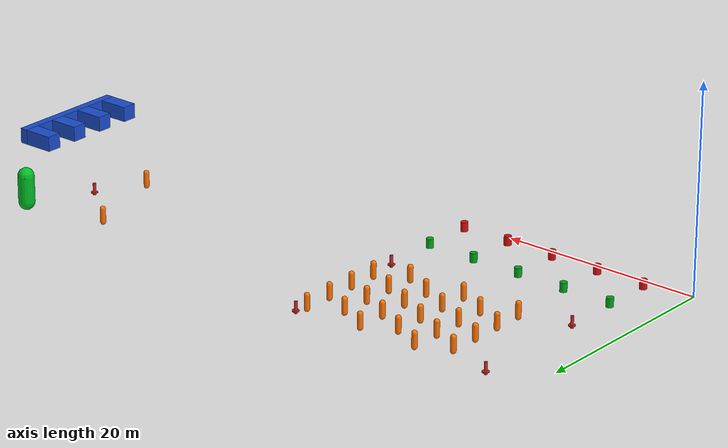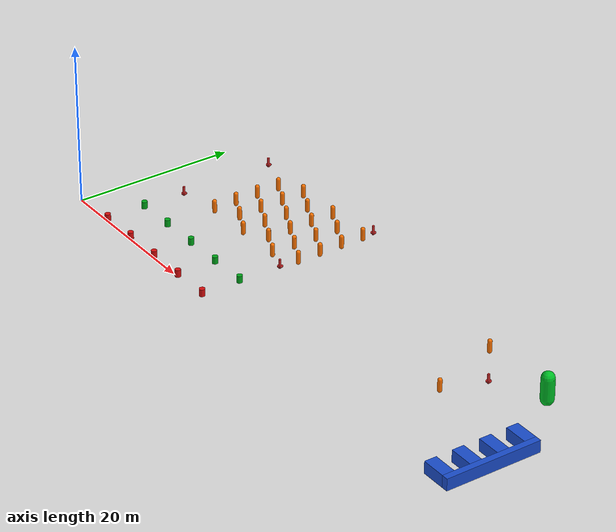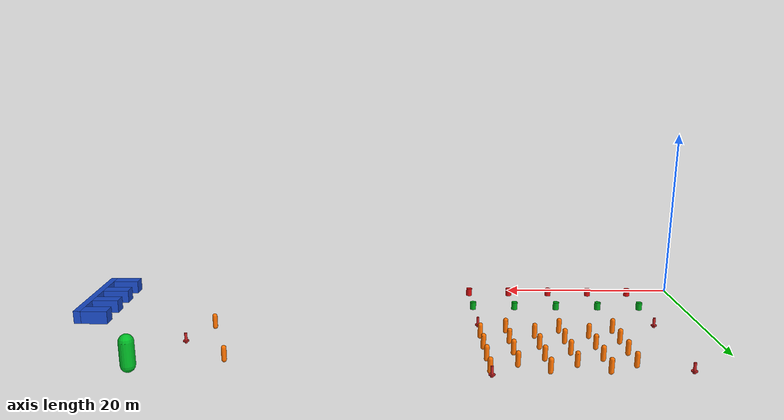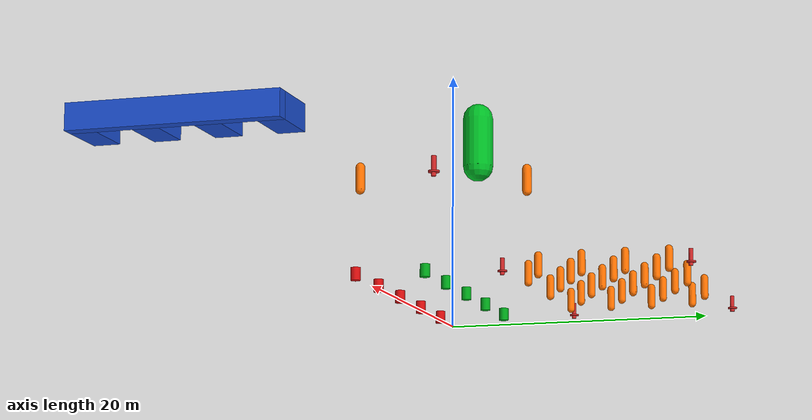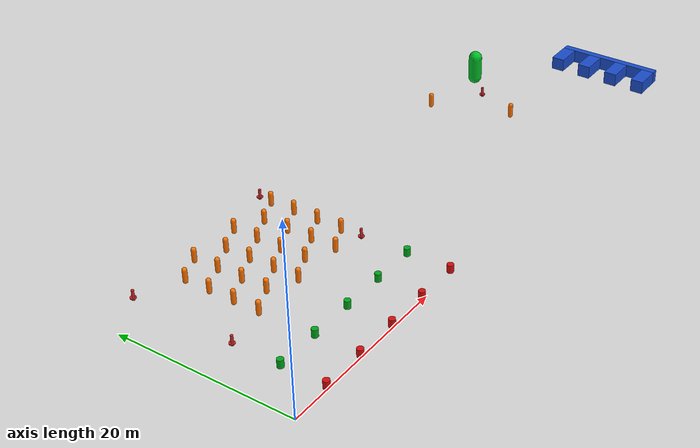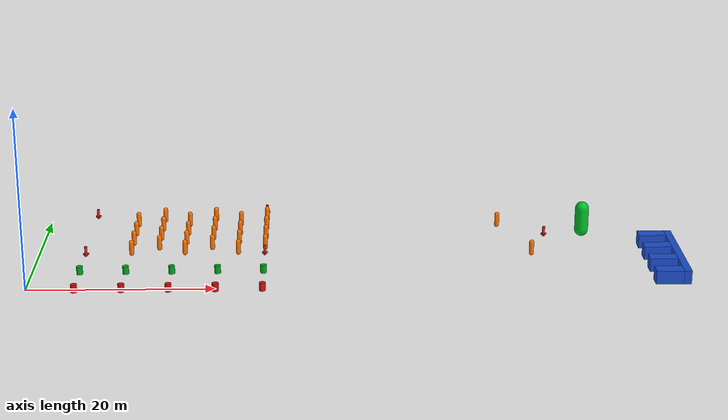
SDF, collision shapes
<?xml version="1.0" ?>
<sdf version="1.7">
  <model name="kaboat_2026_comprehensive_mission">
    <static>true</static>

    <!-- ==== 좌측 구역 모서리 빨간 부표 4개 (30m 존 경계, "5m"/"2m"/"12m" 치수) ==== -->
    <include>
      <name>gate_red_left_top</name>
      <uri>https://fuel.gazebosim.org/1.0/openrobotics/models/mb_marker_buoy_red</uri>
      <pose>5 23 0 0 0 0</pose>
    </include>
    <include>
      <name>gate_red_left_bottom</name>
      <uri>https://fuel.gazebosim.org/1.0/openrobotics/models/mb_marker_buoy_red</uri>
      <pose>5 11 0 0 0 0</pose>
    </include>
    <include>
      <name>gate_red_mid_top</name>
      <uri>https://fuel.gazebosim.org/1.0/openrobotics/models/mb_marker_buoy_red</uri>
      <pose>25 24 0 0 0 0</pose>
    </include>
    <include>
      <name>gate_red_mid_bottom</name>
      <uri>https://fuel.gazebosim.org/1.0/openrobotics/models/mb_marker_buoy_red</uri>
      <pose>25 11 0 0 0 0</pose>
    </include>

    <!-- Col 1 (x=10, 경로 위): 4개 -->
    <include><name>obs_c1_1</name><uri>model://basic_buoy_orange</uri><pose>10 12 0 0 0 0</pose></include>
    <include><name>obs_c1_2</name><uri>model://basic_buoy_orange</uri><pose>10 15 0 0 0 0</pose></include>
    <include><name>obs_c1_3</name><uri>model://basic_buoy_orange</uri><pose>10 18 0 0 0 0</pose></include>
    <include><name>obs_c1_4</name><uri>model://basic_buoy_orange</uri><pose>10 21 0 0 0 0</pose></include>
    <!-- Col 2 (x=13, y +1.5 — 경로 y=15 에 틈): 4개 -->
    <include><name>obs_c2_1</name><uri>model://basic_buoy_orange</uri><pose>13 13.5 0 0 0 0</pose></include>
    <include><name>obs_c2_2</name><uri>model://basic_buoy_orange</uri><pose>13 16.5 0 0 0 0</pose></include>
    <include><name>obs_c2_3</name><uri>model://basic_buoy_orange</uri><pose>13 19.5 0 0 0 0</pose></include>
    <include><name>obs_c2_4</name><uri>model://basic_buoy_orange</uri><pose>13 22.5 0 0 0 0</pose></include>
    <!-- Col 3 (x=16, 경로 위): 4개 -->
    <include><name>obs_c3_1</name><uri>model://basic_buoy_orange</uri><pose>16 12 0 0 0 0</pose></include>
    <include><name>obs_c3_2</name><uri>model://basic_buoy_orange</uri><pose>16 15 0 0 0 0</pose></include>
    <include><name>obs_c3_3</name><uri>model://basic_buoy_orange</uri><pose>16 18 0 0 0 0</pose></include>
    <include><name>obs_c3_4</name><uri>model://basic_buoy_orange</uri><pose>16 21 0 0 0 0</pose></include>
    <!-- Col 4 (x=19, y +1.5): 4개 -->
    <include><name>obs_c4_1</name><uri>model://basic_buoy_orange</uri><pose>19 13.5 0 0 0 0</pose></include>
    <include><name>obs_c4_2</name><uri>model://basic_buoy_orange</uri><pose>19 16.5 0 0 0 0</pose></include>
    <include><name>obs_c4_3</name><uri>model://basic_buoy_orange</uri><pose>19 19.5 0 0 0 0</pose></include>
    <include><name>obs_c4_4</name><uri>model://basic_buoy_orange</uri><pose>19 22.5 0 0 0 0</pose></include>
    <!-- Col 5 (x=22, 경로 위): 4개 -->
    <include><name>obs_c5_1</name><uri>model://basic_buoy_orange</uri><pose>22 12 0 0 0 0</pose></include>
    <include><name>obs_c5_2</name><uri>model://basic_buoy_orange</uri><pose>22 15 0 0 0 0</pose></include>
    <include><name>obs_c5_3</name><uri>model://basic_buoy_orange</uri><pose>22 18 0 0 0 0</pose></include>
    <include><name>obs_c5_4</name><uri>model://basic_buoy_orange</uri><pose>22 21 0 0 0 0</pose></include>
    <!-- Col 6 (x=25, y +1.5): 4개. obs_c6_4 는 등간격 y=22.5. 이 열은 구역경계
         마커 gate_red_mid_top 과 x=25 로 겹쳐 스폰 충돌이 났는데, 부표를 옮기는
         대신 마커를 y=23→24 로 올려 해결했다(위 마커 주석 참고). -->
    <include><name>obs_c6_1</name><uri>model://basic_buoy_orange</uri><pose>25 13.5 0 0 0 0</pose></include>
    <include><name>obs_c6_2</name><uri>model://basic_buoy_orange</uri><pose>25 16.5 0 0 0 0</pose></include>
    <include><name>obs_c6_3</name><uri>model://basic_buoy_orange</uri><pose>25 19.5 0 0 0 0</pose></include>
    <include><name>obs_c6_4</name><uri>model://basic_buoy_orange</uri><pose>25 22.5 0 0 0 0</pose></include>

    <!-- ==== 하단 채널(항로추종): 초록 삼각형 5개 / 빨간 삼각형 5개.
         x방향(같은 행 내 인접 부표 간) 5m, y방향(빨강-초록 행 간) 5m 간격.
         배는 이 채널을 왼쪽(x=5)에서 오른쪽(x=25 밖)으로 직진 통과한다. ==== -->
    <include><name>gate_green_1</name><uri>model://buoy_cone_green</uri><pose>5  5.5 0 0 0 0</pose></include>
    <include><name>gate_green_2</name><uri>model://buoy_cone_green</uri><pose>10 5.5 0 0 0 0</pose></include>
    <include><name>gate_green_3</name><uri>model://buoy_cone_green</uri><pose>15 5.5 0 0 0 0</pose></include>
    <include><name>gate_green_4</name><uri>model://buoy_cone_green</uri><pose>20 5.5 0 0 0 0</pose></include>
    <include><name>gate_green_5</name><uri>model://buoy_cone_green</uri><pose>25 5.5 0 0 0 0</pose></include>
    <include><name>gate_red_1</name><uri>model://buoy_cone_red</uri><pose>5  0.5 0 0 0 0</pose></include>
    <include><name>gate_red_2</name><uri>model://buoy_cone_red</uri><pose>10 0.5 0 0 0 0</pose></include>
    <include><name>gate_red_3</name><uri>model://buoy_cone_red</uri><pose>15 0.5 0 0 0 0</pose></include>
    <include><name>gate_red_4</name><uri>model://buoy_cone_red</uri><pose>20 0.5 0 0 0 0</pose></include>
    <include><name>gate_red_5</name><uri>model://buoy_cone_red</uri><pose>25 0.5 0 0 0 0</pose></include>

    <!-- ==== 우측 구역 (x: 49~70, 21m 존) ==== -->
    <!-- 오렌지-초록 쌍 (10m 가로 간격), 빨간 1개(4m 아래), 오렌지 1개(추가 5m 아래) -->
    <include><name>search_orange_1</name><uri>model://basic_buoy_orange</uri><pose>52 20 0 0 0 0</pose></include>
    <include><name>search_green_1</name><uri>model://basic_buoy_green</uri><pose>62 20 0 0 0 0</pose></include>
    <include><name>search_red_1</name><uri>https://fuel.gazebosim.org/1.0/openrobotics/models/mb_marker_buoy_red</uri><pose>57 16 0 0 0 0</pose></include>
    <include><name>search_orange_2</name><uri>model://basic_buoy_orange</uri><pose>55 11 0 0 0 0</pose></include>

    <link name="dock_structure">
      <pose>0 0 0.75 0 0 0</pose>

      <!-- 핑거 1 (하단 끝, y=0.75) -->
      <collision name="finger1_collision">
        <pose>68.5 0.75 0 0 0 0</pose>
        <geometry><box><size>3.0 1.5 1.5</size></box></geometry>
      </collision>
      <visual name="finger1_visual">
        <pose>68.5 0.75 0 0 0 0</pose>
        <geometry><box><size>3.0 1.5 1.5</size></box></geometry>
        <material>
          <ambient>0.1 0.3 0.8 1.0</ambient>
          <diffuse>0.1 0.3 0.8 1.0</diffuse>
        </material>
      </visual>

      <!-- 핑거 2 (y=4.25) -->
      <collision name="finger2_collision">
        <pose>68.5 4.25 0 0 0 0</pose>
        <geometry><box><size>3.0 1.5 1.5</size></box></geometry>
      </collision>
      <visual name="finger2_visual">
        <pose>68.5 4.25 0 0 0 0</pose>
        <geometry><box><size>3.0 1.5 1.5</size></box></geometry>
        <material>
          <ambient>0.1 0.3 0.8 1.0</ambient>
          <diffuse>0.1 0.3 0.8 1.0</diffuse>
        </material>
      </visual>

      <!-- 핑거 3 (y=7.75) -->
      <collision name="finger3_collision">
        <pose>68.5 7.75 0 0 0 0</pose>
        <geometry><box><size>3.0 1.5 1.5</size></box></geometry>
      </collision>
      <visual name="finger3_visual">
        <pose>68.5 7.75 0 0 0 0</pose>
        <geometry><box><size>3.0 1.5 1.5</size></box></geometry>
        <material>
          <ambient>0.1 0.3 0.8 1.0</ambient>
          <diffuse>0.1 0.3 0.8 1.0</diffuse>
        </material>
      </visual>

      <!-- 핑거 4 (상단 끝, y=11.25) -->
      <collision name="finger4_collision">
        <pose>68.5 11.25 0 0 0 0</pose>
        <geometry><box><size>3.0 1.5 1.5</size></box></geometry>
      </collision>
      <visual name="finger4_visual">
        <pose>68.5 11.25 0 0 0 0</pose>
        <geometry><box><size>3.0 1.5 1.5</size></box></geometry>
        <material>
          <ambient>0.1 0.3 0.8 1.0</ambient>
          <diffuse>0.1 0.3 0.8 1.0</diffuse>
        </material>
      </visual>

      <!-- 뒷벽: 네 핑거를 x=70 선에서 지지하는 배경 벽 (y=0~12 전체) -->
      <collision name="backwall_collision">
        <pose>70.4 6.0 0 0 0 0</pose>
        <geometry><box><size>0.8 12.0 1.5</size></box></geometry>
      </collision>
      <visual name="backwall_visual">
        <pose>70.4 6.0 0 0 0 0</pose>
        <geometry><box><size>0.8 12.0 1.5</size></box></geometry>
        <material>
          <ambient>0.08 0.2 0.6 1.0</ambient>
          <diffuse>0.08 0.2 0.6 1.0</diffuse>
        </material>
      </visual>

      <visual name="dock_mark_green">
        <pose>69.97 2.5 0 0 0 0</pose>
        <geometry><box><size>0.04 1.0 1.0</size></box></geometry>
        <material>
          <ambient>0.02 0.9 0.05 1.0</ambient>
          <diffuse>0.02 0.9 0.05 1.0</diffuse>
          <emissive>0.01 0.2 0.01 1.0</emissive>
        </material>
      </visual>
      <visual name="dock_mark_red">
        <pose>69.97 6.0 0 0 0 0</pose>
        <geometry><box><size>0.04 1.0 1.0</size></box></geometry>
        <material>
          <ambient>0.95 0.02 0.02 1.0</ambient>
          <diffuse>0.95 0.02 0.02 1.0</diffuse>
          <emissive>0.2 0.01 0.01 1.0</emissive>
        </material>
      </visual>
      <visual name="dock_mark_orange">
        <pose>69.97 9.5 0 0 0 0</pose>
        <geometry><box><size>0.04 1.0 1.0</size></box></geometry>
        <material>
          <ambient>1.0 0.35 0.02 1.0</ambient>
          <diffuse>1.0 0.35 0.02 1.0</diffuse>
          <emissive>0.2 0.07 0.01 1.0</emissive>
        </material>
      </visual>
    </link>

  </model>
</sdf>

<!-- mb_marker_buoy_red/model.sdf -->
<sdf version="1.6">
  <model name="mb_marker_buoy_red">
    <link name="link">
      <inertial>
        <pose>0 0 -2 0 0 0</pose>
        <!-- Mass determined based on buoyancy geometry so object
             floats at mid-point of sphere -->
        <mass>20</mass>
        <!-- Mark only - based on cylinder -->
        <inertia>
          <ixx>1.0</ixx>
          <ixy>0</ixy>
          <ixz>0</ixz>
          <iyy>1.0</iyy>
          <iyz>0</iyz>
          <izz>0.1</izz>
        </inertia>
      </inertial>
      <collision name="collision_inner">
        <pose>0 -0.02 0.02 0 0 0</pose>
        <geometry>
          <cylinder>
            <radius>0.15</radius>
            <length>1.15</length>
          </cylinder>
        </geometry>
      </collision>
      <collision name="collision_outer">
        <pose>0 0 -0.3 0 0 0</pose>
        <geometry>
          <cylinder>
            <radius>0.325</radius>
            <length>0.1</length>
          </cylinder>
        </geometry>
      </collision>
      <visual name="visual">
        <pose>0 0 0 1.57079 0 0</pose>
        <geometry>
	        <mesh><uri>model://mb_marker_buoy_red/meshes/mb_marker_buoy.dae</uri></mesh>
        </geometry>
        <material>
          <script>
            <uri>model://mb_marker_buoy_red/materials/scripts/mb_marker_buoy.material</uri>
            <name>mb_marker_buoy/Red</name>
          </script>
        </material>
      </visual>
    </link>
    <plugin name="BuoyancyPlugin" filename="libbuoyancy_gazebo_plugin.so">
      <wave_model>ocean_waves</wave_model>
      <fluid_density>1000</fluid_density>
      <fluid_level>0.0</fluid_level>
      <linear_drag>25.0</linear_drag>
      <angular_drag>2.0</angular_drag>
      <buoyancy name="buoyancy_sphere">
        <link_name>link</link_name>
        <pose>0 0 -0.12 0 0 0</pose>
        <geometry>
          <sphere>
            <radius>0.325</radius>
          </sphere>
        </geometry>
      </buoyancy>
    </plugin>
  </model>
</sdf>

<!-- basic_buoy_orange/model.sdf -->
<sdf version="1.7">
  <model name="basic_buoy_orange">
    <link name="link">
      <inertial>
        <pose>0 0 -0.25 0 0 0</pose>
        <mass>138.9</mass>
        <inertia>
          <ixx>13.89</ixx>
          <iyy>13.89</iyy>
          <izz>6.94</izz>
        </inertia>
      </inertial>

      <collision name="collision">
        <geometry>
          <capsule>
            <radius>0.26665</radius>
            <length>1.3</length>
          </capsule>
        </geometry>
      </collision>

      <visual name="visual">
        <geometry>
          <capsule>
            <radius>0.26665</radius>
            <length>1.3</length>
          </capsule>
        </geometry>
        <material>
          <ambient>1.0 0.45 0.0 1.0</ambient>
          <diffuse>1.0 0.45 0.0 1.0</diffuse>
          <specular>0.5 0.5 0.5 1.0</specular>
        </material>
      </visual>
    </link>

    <plugin name="vrx::PolyhedraBuoyancyDrag" filename="libPolyhedraBuoyancyDrag.so">
      <fluid_density>1000</fluid_density>
      <fluid_level>0.0</fluid_level>
      <linear_drag>25.0</linear_drag>
      <angular_drag>2.0</angular_drag>
      <buoyancy name="collision_outer">
        <link_name>link</link_name>
        <pose>0 0 -0.15 0 0 0</pose>
        <geometry>
          <cylinder>
            <radius>0.26665</radius>
            <length>1.3</length>
          </cylinder>
        </geometry>
      </buoyancy>
      <wavefield>
        <topic>/vrx/wavefield/parameters</topic>
      </wavefield>
    </plugin>
  </model>
</sdf>

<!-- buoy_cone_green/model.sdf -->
<sdf version="1.9">
  <model name="buoy_cone_green">
    <link name="link">
      <inertial>
        <pose>0 0 -0.3 0 0 0</pose>
        <mass>50.0</mass>
        <inertia>
          <ixx>10.0</ixx>
          <iyy>10.0</iyy>
          <izz>5.0</izz>
        </inertia>
      </inertial>

      <collision name="collision">
        <geometry>
          <cylinder>
            <radius>0.35</radius>
            <length>0.9</length>
          </cylinder>
        </geometry>
      </collision>

      <visual name="visual">
        <geometry>
          <cylinder>
            <radius>0.35</radius>
            <length>0.9</length>
          </cylinder>
        </geometry>
        <material>
          <ambient>0.0 0.65 0.1 1.0</ambient>
          <diffuse>0.0 0.65 0.1 1.0</diffuse>
          <specular>0.4 0.4 0.4 1.0</specular>
        </material>
      </visual>
    </link>

    <plugin name="vrx::PolyhedraBuoyancyDrag" filename="libPolyhedraBuoyancyDrag.so">
      <fluid_density>1000</fluid_density>
      <fluid_level>0.0</fluid_level>
      <linear_drag>15.0</linear_drag>
      <angular_drag>1.0</angular_drag>
      <buoyancy name="collision_outer">
        <link_name>link</link_name>
        <pose>0 0 -0.45 0 0 0</pose>
        <geometry>
          <cylinder>
            <radius>0.35</radius>
            <length>0.9</length>
          </cylinder>
        </geometry>
      </buoyancy>
      <wavefield>
        <topic>/vrx/wavefield/parameters</topic>
      </wavefield>
    </plugin>
  </model>
</sdf>

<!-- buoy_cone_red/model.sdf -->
<sdf version="1.9">
  <model name="buoy_cone_red">
    <link name="link">
      <inertial>
        <pose>0 0 -0.3 0 0 0</pose>
        <mass>50.0</mass>
        <inertia>
          <ixx>10.0</ixx>
          <iyy>10.0</iyy>
          <izz>5.0</izz>
        </inertia>
      </inertial>

      <collision name="collision">
        <geometry>
          <cylinder>
            <radius>0.35</radius>
            <length>0.9</length>
          </cylinder>
        </geometry>
      </collision>

      <visual name="visual">
        <geometry>
          <cylinder>
            <radius>0.35</radius>
            <length>0.9</length>
          </cylinder>
        </geometry>
        <material>
          <ambient>0.85 0.05 0.05 1.0</ambient>
          <diffuse>0.85 0.05 0.05 1.0</diffuse>
          <specular>0.4 0.4 0.4 1.0</specular>
        </material>
      </visual>
    </link>

    <plugin name="vrx::PolyhedraBuoyancyDrag" filename="libPolyhedraBuoyancyDrag.so">
      <fluid_density>1000</fluid_density>
      <fluid_level>0.0</fluid_level>
      <linear_drag>15.0</linear_drag>
      <angular_drag>1.0</angular_drag>
      <buoyancy name="collision_outer">
        <link_name>link</link_name>
        <pose>0 0 -0.45 0 0 0</pose>
        <geometry>
          <cylinder>
            <radius>0.35</radius>
            <length>0.9</length>
          </cylinder>
        </geometry>
      </buoyancy>
      <wavefield>
        <topic>/vrx/wavefield/parameters</topic>
      </wavefield>
    </plugin>
  </model>
</sdf>

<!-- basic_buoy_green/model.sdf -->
<sdf version="1.7">
  <model name="basic_buoy_green">
    <link name="link">
      <inertial>
        <pose>0 0 -0.5 0 0 0</pose>
        <mass>2500.0</mass>
        <inertia>
          <ixx>1000.0</ixx>
          <iyy>1000.0</iyy>
          <izz>500.0</izz>
        </inertia>
      </inertial>

      <collision name="collision">
        <geometry>
          <capsule>
            <radius>0.8</radius>
            <length>2.6</length>
          </capsule>
        </geometry>
      </collision>

      <visual name="visual">
        <geometry>
          <capsule>
            <radius>0.8</radius>
            <length>2.6</length>
          </capsule>
        </geometry>
        <material>
          <ambient>0.0 0.75 0.15 1.0</ambient>
          <diffuse>0.0 0.75 0.15 1.0</diffuse>
          <specular>0.5 0.5 0.5 1.0</specular>
        </material>
      </visual>
    </link>

    <plugin name="vrx::PolyhedraBuoyancyDrag" filename="libPolyhedraBuoyancyDrag.so">
      <fluid_density>1000</fluid_density>
      <fluid_level>0.0</fluid_level>
      <linear_drag>25.0</linear_drag>
      <angular_drag>2.0</angular_drag>
      <buoyancy name="collision_outer">
        <link_name>link</link_name>
        <pose>0 0 -0.3 0 0 0</pose>
        <geometry>
          <cylinder>
            <radius>0.8</radius>
            <length>2.6</length>
          </cylinder>
        </geometry>
      </buoyancy>
      <wavefield>
        <topic>/vrx/wavefield/parameters</topic>
      </wavefield>
    </plugin>
  </model>
</sdf>
